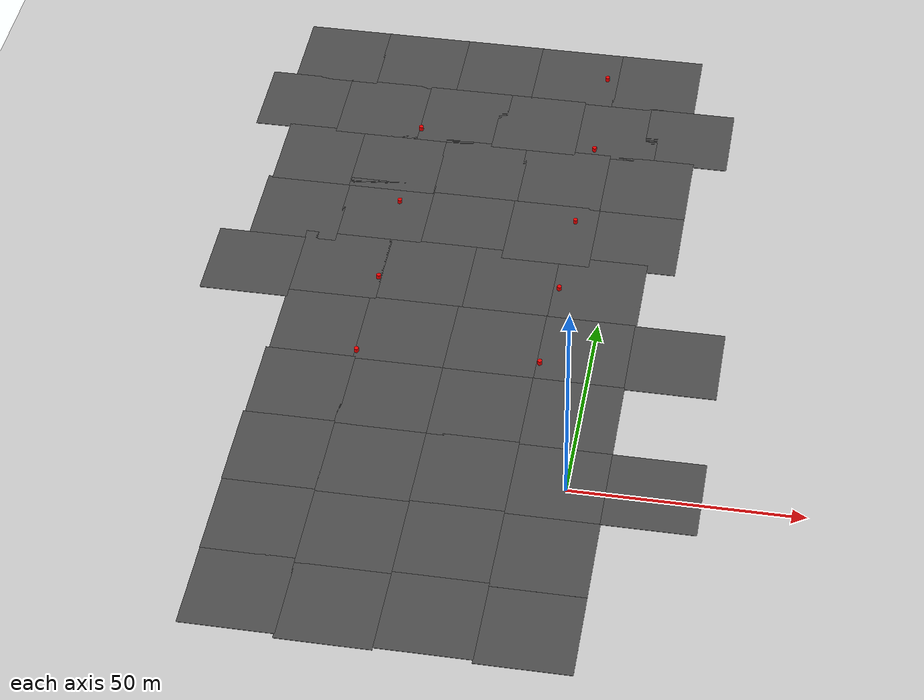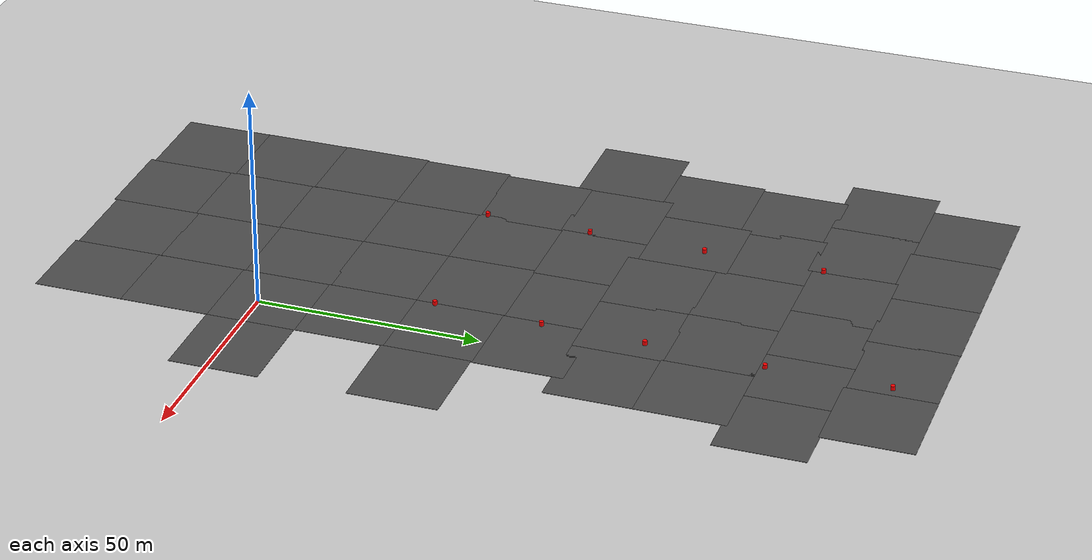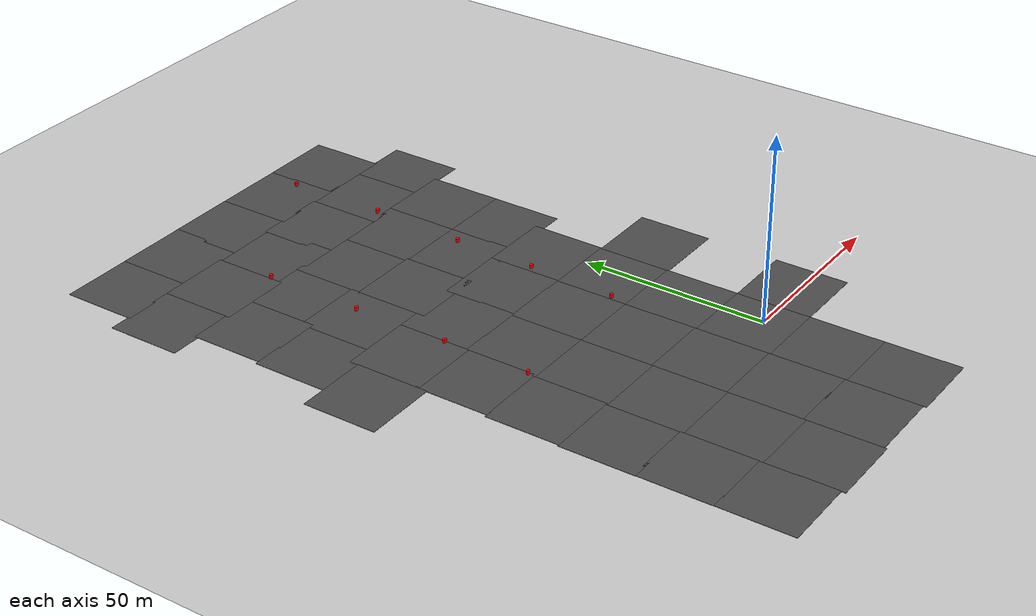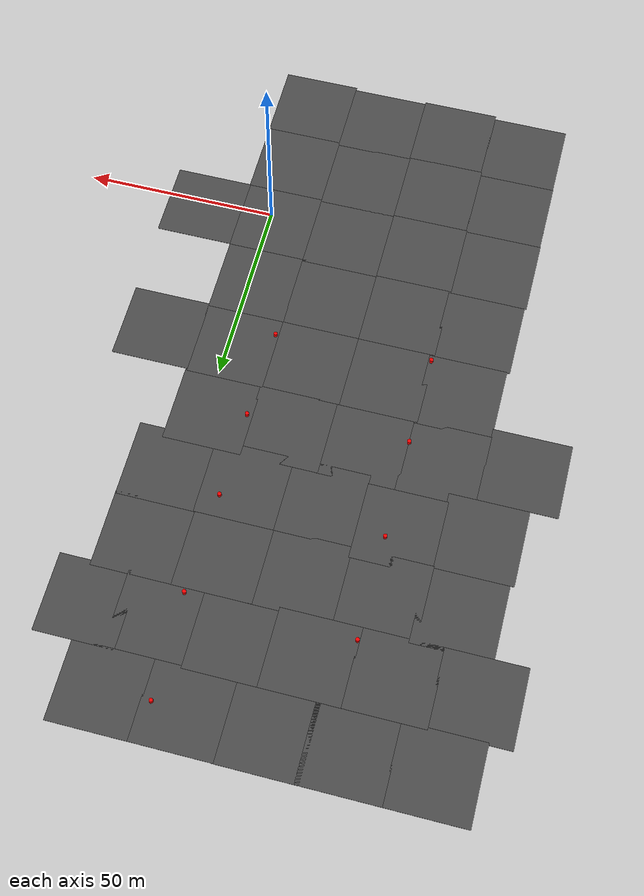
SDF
<sdf version="1.6">
 <world name="default">
  <model name="ground_plane">
   <static>1</static>
   <link name="link">
    <collision name="collision">
     <geometry><plane><normal>0 0 1</normal><size>100 100</size></plane></geometry>
     <surface>
      <contact><collide_bitmask>65535</collide_bitmask></contact>
      <friction><ode><mu>100</mu><mu2>50</mu2></ode></friction>
     </surface>
    </collision>
    <visual name="visual">
     <cast_shadows>0</cast_shadows>
     <geometry><plane><normal>0 0 1</normal><size>100 100</size></plane></geometry>
     <material>
      <script><uri>file://media/materials/scripts/gazebo.material</uri><name>Gazebo/Grey</name></script>
     </material>
    </visual>
   </link>
  </model>
  <model name="asphalt_plane">
   <static>1</static>
   <link name="link">
    <collision name="collision"><geometry><box><size>20 20 0.1</size></box></geometry></collision>
    <visual name="visual">
     <cast_shadows>0</cast_shadows>
     <geometry><box><size>20 20 0.1</size></box></geometry>
     <material>
      <script>
       <uri>model://asphalt_plane/materials/scripts</uri>
       <uri>model://asphalt_plane/materials/textures</uri>
       <name>vrc/asphalt</name>
      </script>
     </material>
    </visual>
   </link>
   <pose>-1.68563 1.69754 0 0 -0 0</pose>
  </model>
  <model name="asphalt_plane_0">
   <static>1</static>
   <link name="link">
    <collision name="collision"><geometry><box><size>20 20 0.1</size></box></geometry></collision>
    <visual name="visual">
     <cast_shadows>0</cast_shadows>
     <geometry><box><size>20 20 0.1</size></box></geometry>
     <material>
      <script>
       <uri>model://asphalt_plane/materials/scripts</uri>
       <uri>model://asphalt_plane/materials/textures</uri>
       <name>vrc/asphalt</name>
      </script>
     </material>
    </visual>
   </link>
   <pose>-21.6689 2.145 0 0 -0 0</pose>
  </model>
  <model name="asphalt_plane_1">
   <static>1</static>
   <link name="link">
    <collision name="collision"><geometry><box><size>20 20 0.1</size></box></geometry></collision>
    <visual name="visual">
     <cast_shadows>0</cast_shadows>
     <geometry><box><size>20 20 0.1</size></box></geometry>
     <material>
      <script>
       <uri>model://asphalt_plane/materials/scripts</uri>
       <uri>model://asphalt_plane/materials/textures</uri>
       <name>vrc/asphalt</name>
      </script>
     </material>
    </visual>
   </link>
   <pose>-21.6452 -17.7707 0 0 -0 0</pose>
  </model>
  <model name="asphalt_plane_2">
   <static>1</static>
   <link name="link">
    <collision name="collision"><geometry><box><size>20 20 0.1</size></box></geometry></collision>
    <visual name="visual">
     <cast_shadows>0</cast_shadows>
     <geometry><box><size>20 20 0.1</size></box></geometry>
     <material>
      <script>
       <uri>model://asphalt_plane/materials/scripts</uri>
       <uri>model://asphalt_plane/materials/textures</uri>
       <name>vrc/asphalt</name>
      </script>
     </material>
    </visual>
   </link>
   <pose>-1.66972 -18.2921 0 0 -0 0</pose>
  </model>
  <model name="asphalt_plane_3">
   <static>1</static>
   <link name="link">
    <collision name="collision"><geometry><box><size>20 20 0.1</size></box></geometry></collision>
    <visual name="visual">
     <cast_shadows>0</cast_shadows>
     <geometry><box><size>20 20 0.1</size></box></geometry>
     <material>
      <script>
       <uri>model://asphalt_plane/materials/scripts</uri>
       <uri>model://asphalt_plane/materials/textures</uri>
       <name>vrc/asphalt</name>
      </script>
     </material>
    </visual>
   </link>
   <pose>-1.6587 -38.2936 0 0 -0 0</pose>
  </model>
  <model name="asphalt_plane_4">
   <static>1</static>
   <link name="link">
    <collision name="collision"><geometry><box><size>20 20 0.1</size></box></geometry></collision>
    <visual name="visual">
     <cast_shadows>0</cast_shadows>
     <geometry><box><size>20 20 0.1</size></box></geometry>
     <material>
      <script>
       <uri>model://asphalt_plane/materials/scripts</uri>
       <uri>model://asphalt_plane/materials/textures</uri>
       <name>vrc/asphalt</name>
      </script>
     </material>
    </visual>
   </link>
   <pose>-21.5514 -37.4819 0 0 -0 0</pose>
  </model>
  <model name="asphalt_plane_5">
   <static>1</static>
   <link name="link">
    <collision name="collision"><geometry><box><size>20 20 0.1</size></box></geometry></collision>
    <visual name="visual">
     <cast_shadows>0</cast_shadows>
     <geometry><box><size>20 20 0.1</size></box></geometry>
     <material>
      <script>
       <uri>model://asphalt_plane/materials/scripts</uri>
       <uri>model://asphalt_plane/materials/textures</uri>
       <name>vrc/asphalt</name>
      </script>
     </material>
    </visual>
   </link>
   <pose>-21.6627 21.6769 0 0 -0 0</pose>
  </model>
  <model name="asphalt_plane_6">
   <static>1</static>
   <link name="link">
    <collision name="collision"><geometry><box><size>20 20 0.1</size></box></geometry></collision>
    <visual name="visual">
     <cast_shadows>0</cast_shadows>
     <geometry><box><size>20 20 0.1</size></box></geometry>
     <material>
      <script>
       <uri>model://asphalt_plane/materials/scripts</uri>
       <uri>model://asphalt_plane/materials/textures</uri>
       <name>vrc/asphalt</name>
      </script>
     </material>
    </visual>
   </link>
   <pose>-21.6696 41.6469 0 0 -0 0</pose>
  </model>
  <model name="asphalt_plane_7">
   <static>1</static>
   <link name="link">
    <collision name="collision"><geometry><box><size>20 20 0.1</size></box></geometry></collision>
    <visual name="visual">
     <cast_shadows>0</cast_shadows>
     <geometry><box><size>20 20 0.1</size></box></geometry>
     <material>
      <script>
       <uri>model://asphalt_plane/materials/scripts</uri>
       <uri>model://asphalt_plane/materials/textures</uri>
       <name>vrc/asphalt</name>
      </script>
     </material>
    </visual>
   </link>
   <pose>-1.7727 21.6828 0 0 -0 0</pose>
  </model>
  <model name="asphalt_plane_8">
   <static>1</static>
   <link name="link">
    <collision name="collision"><geometry><box><size>20 20 0.1</size></box></geometry></collision>
    <visual name="visual">
     <cast_shadows>0</cast_shadows>
     <geometry><box><size>20 20 0.1</size></box></geometry>
     <material>
      <script>
       <uri>model://asphalt_plane/materials/scripts</uri>
       <uri>model://asphalt_plane/materials/textures</uri>
       <name>vrc/asphalt</name>
      </script>
     </material>
    </visual>
   </link>
   <pose>-1.71814 41.6665 0 0 -0 0</pose>
  </model>
  <model name="asphalt_plane_11">
   <static>1</static>
   <link name="link">
    <collision name="collision"><geometry><box><size>20 20 0.1</size></box></geometry></collision>
    <visual name="visual">
     <cast_shadows>0</cast_shadows>
     <geometry><box><size>20 20 0.1</size></box></geometry>
     <material>
      <script>
       <uri>model://asphalt_plane/materials/scripts</uri>
       <uri>model://asphalt_plane/materials/textures</uri>
       <name>vrc/asphalt</name>
      </script>
     </material>
    </visual>
   </link>
   <pose>18.1716 1.63074 0 0 -0 0</pose>
  </model>
  <model name="asphalt_plane_13">
   <static>1</static>
   <link name="link">
    <collision name="collision"><geometry><box><size>20 20 0.1</size></box></geometry></collision>
    <visual name="visual">
     <cast_shadows>0</cast_shadows>
     <geometry><box><size>20 20 0.1</size></box></geometry>
     <material>
      <script>
       <uri>model://asphalt_plane/materials/scripts</uri>
       <uri>model://asphalt_plane/materials/textures</uri>
       <name>vrc/asphalt</name>
      </script>
     </material>
    </visual>
   </link>
   <pose>18.0714 41.1468 0 0 -0 0</pose>
  </model>
  <model name="asphalt_plane_19">
   <static>1</static>
   <link name="link">
    <collision name="collision"><geometry><box><size>20 20 0.1</size></box></geometry></collision>
    <visual name="visual">
     <cast_shadows>0</cast_shadows>
     <geometry><box><size>20 20 0.1</size></box></geometry>
     <material>
      <script>
       <uri>model://asphalt_plane/materials/scripts</uri>
       <uri>model://asphalt_plane/materials/textures</uri>
       <name>vrc/asphalt</name>
      </script>
     </material>
    </visual>
   </link>
   <pose>-41.6151 41.6794 0 0 -0 0</pose>
  </model>
  <model name="asphalt_plane_20">
   <static>1</static>
   <link name="link">
    <collision name="collision"><geometry><box><size>20 20 0.1</size></box></geometry></collision>
    <visual name="visual">
     <cast_shadows>0</cast_shadows>
     <geometry><box><size>20 20 0.1</size></box></geometry>
     <material>
      <script>
       <uri>model://asphalt_plane/materials/scripts</uri>
       <uri>model://asphalt_plane/materials/textures</uri>
       <name>vrc/asphalt</name>
      </script>
     </material>
    </visual>
   </link>
   <pose>-41.6462 21.7314 0 0 -0 0</pose>
  </model>
  <model name="asphalt_plane_21">
   <static>1</static>
   <link name="link">
    <collision name="collision"><geometry><box><size>20 20 0.1</size></box></geometry></collision>
    <visual name="visual">
     <cast_shadows>0</cast_shadows>
     <geometry><box><size>20 20 0.1</size></box></geometry>
     <material>
      <script>
       <uri>model://asphalt_plane/materials/scripts</uri>
       <uri>model://asphalt_plane/materials/textures</uri>
       <name>vrc/asphalt</name>
      </script>
     </material>
    </visual>
   </link>
   <pose>-41.6242 1.80147 0 0 -0 0</pose>
  </model>
  <model name="asphalt_plane_22">
   <static>1</static>
   <link name="link">
    <collision name="collision"><geometry><box><size>20 20 0.1</size></box></geometry></collision>
    <visual name="visual">
     <cast_shadows>0</cast_shadows>
     <geometry><box><size>20 20 0.1</size></box></geometry>
     <material>
      <script>
       <uri>model://asphalt_plane/materials/scripts</uri>
       <uri>model://asphalt_plane/materials/textures</uri>
       <name>vrc/asphalt</name>
      </script>
     </material>
    </visual>
   </link>
   <pose>-41.5505 -18.1854 0 0 -0 0</pose>
  </model>
  <model name="asphalt_plane_23">
   <static>1</static>
   <link name="link">
    <collision name="collision"><geometry><box><size>20 20 0.1</size></box></geometry></collision>
    <visual name="visual">
     <cast_shadows>0</cast_shadows>
     <geometry><box><size>20 20 0.1</size></box></geometry>
     <material>
      <script>
       <uri>model://asphalt_plane/materials/scripts</uri>
       <uri>model://asphalt_plane/materials/textures</uri>
       <name>vrc/asphalt</name>
      </script>
     </material>
    </visual>
   </link>
   <pose>-41.5125 -38.0904 0 0 -0 0</pose>
  </model>
  <model name="asphalt_plane_26">
   <static>1</static>
   <link name="link">
    <collision name="collision"><geometry><box><size>20 20 0.1</size></box></geometry></collision>
    <visual name="visual">
     <cast_shadows>0</cast_shadows>
     <geometry><box><size>20 20 0.1</size></box></geometry>
     <material>
      <script>
       <uri>model://asphalt_plane/materials/scripts</uri>
       <uri>model://asphalt_plane/materials/textures</uri>
       <name>vrc/asphalt</name>
      </script>
     </material>
    </visual>
   </link>
   <pose>-1.5571 61.3628 0 0 -0 0</pose>
  </model>
  <model name="asphalt_plane_27">
   <static>1</static>
   <link name="link">
    <collision name="collision"><geometry><box><size>20 20 0.1</size></box></geometry></collision>
    <visual name="visual">
     <cast_shadows>0</cast_shadows>
     <geometry><box><size>20 20 0.1</size></box></geometry>
     <material>
      <script>
       <uri>model://asphalt_plane/materials/scripts</uri>
       <uri>model://asphalt_plane/materials/textures</uri>
       <name>vrc/asphalt</name>
      </script>
     </material>
    </visual>
   </link>
   <pose>-21.1441 61.4149 0 0 -0 0</pose>
  </model>
  <model name="asphalt_plane_28">
   <static>1</static>
   <link name="link">
    <collision name="collision"><geometry><box><size>20 20 0.1</size></box></geometry></collision>
    <visual name="visual">
     <cast_shadows>0</cast_shadows>
     <geometry><box><size>20 20 0.1</size></box></geometry>
     <material>
      <script>
       <uri>model://asphalt_plane/materials/scripts</uri>
       <uri>model://asphalt_plane/materials/textures</uri>
       <name>vrc/asphalt</name>
      </script>
     </material>
    </visual>
   </link>
   <pose>-40.8033 61.467 0 0 -0 0</pose>
  </model>
  <model name="asphalt_plane_87">
   <static>1</static>
   <link name="link">
    <collision name="collision"><geometry><box><size>20 20 0.1</size></box></geometry></collision>
    <visual name="visual">
     <cast_shadows>0</cast_shadows>
     <geometry><box><size>20 20 0.1</size></box></geometry>
     <material>
      <script>
       <uri>model://asphalt_plane/materials/scripts</uri>
       <uri>model://asphalt_plane/materials/textures</uri>
       <name>vrc/asphalt</name>
      </script>
     </material>
    </visual>
   </link>
   <pose>4.85843 78.9112 0 0 -0 0</pose>
  </model>
  <model name="asphalt_plane_88">
   <static>1</static>
   <link name="link">
    <collision name="collision"><geometry><box><size>20 20 0.1</size></box></geometry></collision>
    <visual name="visual">
     <cast_shadows>0</cast_shadows>
     <geometry><box><size>20 20 0.1</size></box></geometry>
     <material>
      <script>
       <uri>model://asphalt_plane/materials/scripts</uri>
       <uri>model://asphalt_plane/materials/textures</uri>
       <name>vrc/asphalt</name>
      </script>
     </material>
    </visual>
   </link>
   <pose>-14.7381 78.8062 0 0 -0 0</pose>
  </model>
  <model name="asphalt_plane_89">
   <static>1</static>
   <link name="link">
    <collision name="collision"><geometry><box><size>20 20 0.1</size></box></geometry></collision>
    <visual name="visual">
     <cast_shadows>0</cast_shadows>
     <geometry><box><size>20 20 0.1</size></box></geometry>
     <material>
      <script>
       <uri>model://asphalt_plane/materials/scripts</uri>
       <uri>model://asphalt_plane/materials/textures</uri>
       <name>vrc/asphalt</name>
      </script>
     </material>
    </visual>
   </link>
   <pose>-33.9221 78.8179 0 0 -0 0</pose>
  </model>
  <model name="asphalt_plane_90">
   <static>1</static>
   <link name="link">
    <collision name="collision"><geometry><box><size>20 20 0.1</size></box></geometry></collision>
    <visual name="visual">
     <cast_shadows>0</cast_shadows>
     <geometry><box><size>20 20 0.1</size></box></geometry>
     <material>
      <script>
       <uri>model://asphalt_plane/materials/scripts</uri>
       <uri>model://asphalt_plane/materials/textures</uri>
       <name>vrc/asphalt</name>
      </script>
     </material>
    </visual>
   </link>
   <pose>-53.7728 81.0871 0 0 -0 0</pose>
  </model>
  <model name="asphalt_plane_91">
   <static>1</static>
   <link name="link">
    <collision name="collision"><geometry><box><size>20 20 0.1</size></box></geometry></collision>
    <visual name="visual">
     <cast_shadows>0</cast_shadows>
     <geometry><box><size>20 20 0.1</size></box></geometry>
     <material>
      <script>
       <uri>model://asphalt_plane/materials/scripts</uri>
       <uri>model://asphalt_plane/materials/textures</uri>
       <name>vrc/asphalt</name>
      </script>
     </material>
    </visual>
   </link>
   <pose>-60.3231 61.088 0 0 -0 0</pose>
  </model>
  <model name="asphalt_plane_92">
   <static>1</static>
   <link name="link">
    <collision name="collision"><geometry><box><size>20 20 0.1</size></box></geometry></collision>
    <visual name="visual">
     <cast_shadows>0</cast_shadows>
     <geometry><box><size>20 20 0.1</size></box></geometry>
     <material>
      <script>
       <uri>model://asphalt_plane/materials/scripts</uri>
       <uri>model://asphalt_plane/materials/textures</uri>
       <name>vrc/asphalt</name>
      </script>
     </material>
    </visual>
   </link>
   <pose>-60.3819 41.9482 0 0 -0 0</pose>
  </model>
  <model name="asphalt_plane_93">
   <static>1</static>
   <link name="link">
    <collision name="collision"><geometry><box><size>20 20 0.1</size></box></geometry></collision>
    <visual name="visual">
     <cast_shadows>0</cast_shadows>
     <geometry><box><size>20 20 0.1</size></box></geometry>
     <material>
      <script>
       <uri>model://asphalt_plane/materials/scripts</uri>
       <uri>model://asphalt_plane/materials/textures</uri>
       <name>vrc/asphalt</name>
      </script>
     </material>
    </visual>
   </link>
   <pose>-61.0956 22.1692 0 0 -0 0</pose>
  </model>
  <model name="asphalt_plane_94">
   <static>1</static>
   <link name="link">
    <collision name="collision"><geometry><box><size>20 20 0.1</size></box></geometry></collision>
    <visual name="visual">
     <cast_shadows>0</cast_shadows>
     <geometry><box><size>20 20 0.1</size></box></geometry>
     <material>
      <script>
       <uri>model://asphalt_plane/materials/scripts</uri>
       <uri>model://asphalt_plane/materials/textures</uri>
       <name>vrc/asphalt</name>
      </script>
     </material>
    </visual>
   </link>
   <pose>-61.517 2.21241 0 0 -0 0</pose>
  </model>
  <model name="asphalt_plane_95">
   <static>1</static>
   <link name="link">
    <collision name="collision"><geometry><box><size>20 20 0.1</size></box></geometry></collision>
    <visual name="visual">
     <cast_shadows>0</cast_shadows>
     <geometry><box><size>20 20 0.1</size></box></geometry>
     <material>
      <script>
       <uri>model://asphalt_plane/materials/scripts</uri>
       <uri>model://asphalt_plane/materials/textures</uri>
       <name>vrc/asphalt</name>
      </script>
     </material>
    </visual>
   </link>
   <pose>-61.4053 -17.1822 0 0 -0 0</pose>
  </model>
  <model name="asphalt_plane_96">
   <static>1</static>
   <link name="link">
    <collision name="collision"><geometry><box><size>20 20 0.1</size></box></geometry></collision>
    <visual name="visual">
     <cast_shadows>0</cast_shadows>
     <geometry><box><size>20 20 0.1</size></box></geometry>
     <material>
      <script>
       <uri>model://asphalt_plane/materials/scripts</uri>
       <uri>model://asphalt_plane/materials/textures</uri>
       <name>vrc/asphalt</name>
      </script>
     </material>
    </visual>
   </link>
   <pose>-61.3325 -37.0305 0 0 -0 0</pose>
  </model>
  <model name="asphalt_plane_139">
   <static>1</static>
   <link name="link">
    <collision name="collision"><geometry><box><size>20 20 0.1</size></box></geometry></collision>
    <visual name="visual">
     <cast_shadows>0</cast_shadows>
     <geometry><box><size>20 20 0.1</size></box></geometry>
     <material>
      <script>
       <uri>model://asphalt_plane/materials/scripts</uri>
       <uri>model://asphalt_plane/materials/textures</uri>
       <name>vrc/asphalt</name>
      </script>
     </material>
    </visual>
   </link>
   <pose>4.87272 98.2548 0 0 -0 0</pose>
  </model>
  <model name="asphalt_plane_140">
   <static>1</static>
   <link name="link">
    <collision name="collision"><geometry><box><size>20 20 0.1</size></box></geometry></collision>
    <visual name="visual">
     <cast_shadows>0</cast_shadows>
     <geometry><box><size>20 20 0.1</size></box></geometry>
     <material>
      <script>
       <uri>model://asphalt_plane/materials/scripts</uri>
       <uri>model://asphalt_plane/materials/textures</uri>
       <name>vrc/asphalt</name>
      </script>
     </material>
    </visual>
   </link>
   <pose>-14.8585 98.286 0 0 -0 0</pose>
  </model>
  <model name="asphalt_plane_141">
   <static>1</static>
   <link name="link">
    <collision name="collision"><geometry><box><size>20 20 0.1</size></box></geometry></collision>
    <visual name="visual">
     <cast_shadows>0</cast_shadows>
     <geometry><box><size>20 20 0.1</size></box></geometry>
     <material>
      <script>
       <uri>model://asphalt_plane/materials/scripts</uri>
       <uri>model://asphalt_plane/materials/textures</uri>
       <name>vrc/asphalt</name>
      </script>
     </material>
    </visual>
   </link>
   <pose>-34.2146 98.3101 0 0 -0 0</pose>
  </model>
  <model name="asphalt_plane_142">
   <static>1</static>
   <link name="link">
    <collision name="collision"><geometry><box><size>20 20 0.1</size></box></geometry></collision>
    <visual name="visual">
     <cast_shadows>0</cast_shadows>
     <geometry><box><size>20 20 0.1</size></box></geometry>
     <material>
      <script>
       <uri>model://asphalt_plane/materials/scripts</uri>
       <uri>model://asphalt_plane/materials/textures</uri>
       <name>vrc/asphalt</name>
      </script>
     </material>
    </visual>
   </link>
   <pose>-53.9836 98.2864 0 0 -0 0</pose>
  </model>
  <model name="asphalt_plane_143">
   <static>1</static>
   <link name="link">
    <collision name="collision"><geometry><box><size>20 20 0.1</size></box></geometry></collision>
    <visual name="visual">
     <cast_shadows>0</cast_shadows>
     <geometry><box><size>20 20 0.1</size></box></geometry>
     <material>
      <script>
       <uri>model://asphalt_plane/materials/scripts</uri>
       <uri>model://asphalt_plane/materials/textures</uri>
       <name>vrc/asphalt</name>
      </script>
     </material>
    </visual>
   </link>
   <pose>-72.3182 98.3078 0 0 -0 0</pose>
  </model>
  <model name="asphalt_plane_144">
   <static>1</static>
   <link name="link">
    <collision name="collision"><geometry><box><size>20 20 0.1</size></box></geometry></collision>
    <visual name="visual">
     <cast_shadows>0</cast_shadows>
     <geometry><box><size>20 20 0.1</size></box></geometry>
     <material>
      <script>
       <uri>model://asphalt_plane/materials/scripts</uri>
       <uri>model://asphalt_plane/materials/textures</uri>
       <name>vrc/asphalt</name>
      </script>
     </material>
    </visual>
   </link>
   <pose>-73.251 78.7338 0 0 -0 0</pose>
  </model>
  <model name="asphalt_plane_145">
   <static>1</static>
   <link name="link">
    <collision name="collision"><geometry><box><size>20 20 0.1</size></box></geometry></collision>
    <visual name="visual">
     <cast_shadows>0</cast_shadows>
     <geometry><box><size>20 20 0.1</size></box></geometry>
     <material>
      <script>
       <uri>model://asphalt_plane/materials/scripts</uri>
       <uri>model://asphalt_plane/materials/textures</uri>
       <name>vrc/asphalt</name>
      </script>
     </material>
    </visual>
   </link>
   <pose>-80.1206 58.7781 0 0 -0 0</pose>
  </model>
  <model name="asphalt_plane_160">
   <static>1</static>
   <link name="link">
    <collision name="collision"><geometry><box><size>20 20 0.1</size></box></geometry></collision>
    <visual name="visual">
     <cast_shadows>0</cast_shadows>
     <geometry><box><size>20 20 0.1</size></box></geometry>
     <material>
      <script>
       <uri>model://asphalt_plane/materials/scripts</uri>
       <uri>model://asphalt_plane/materials/textures</uri>
       <name>vrc/asphalt</name>
      </script>
     </material>
    </visual>
   </link>
   <pose>12.6571 117.077 0 0 -0 0</pose>
  </model>
  <model name="asphalt_plane_161">
   <static>1</static>
   <link name="link">
    <collision name="collision"><geometry><box><size>20 20 0.1</size></box></geometry></collision>
    <visual name="visual">
     <cast_shadows>0</cast_shadows>
     <geometry><box><size>20 20 0.1</size></box></geometry>
     <material>
      <script>
       <uri>model://asphalt_plane/materials/scripts</uri>
       <uri>model://asphalt_plane/materials/textures</uri>
       <name>vrc/asphalt</name>
      </script>
     </material>
    </visual>
   </link>
   <pose>-4.5132 117.248 0 0 -0 0</pose>
  </model>
  <model name="asphalt_plane_162">
   <static>1</static>
   <link name="link">
    <collision name="collision"><geometry><box><size>20 20 0.1</size></box></geometry></collision>
    <visual name="visual">
     <cast_shadows>0</cast_shadows>
     <geometry><box><size>20 20 0.1</size></box></geometry>
     <material>
      <script>
       <uri>model://asphalt_plane/materials/scripts</uri>
       <uri>model://asphalt_plane/materials/textures</uri>
       <name>vrc/asphalt</name>
      </script>
     </material>
    </visual>
   </link>
   <pose>-23.3943 117.324 0 0 -0 0</pose>
  </model>
  <model name="asphalt_plane_163">
   <static>1</static>
   <link name="link">
    <collision name="collision"><geometry><box><size>20 20 0.1</size></box></geometry></collision>
    <visual name="visual">
     <cast_shadows>0</cast_shadows>
     <geometry><box><size>20 20 0.1</size></box></geometry>
     <material>
      <script>
       <uri>model://asphalt_plane/materials/scripts</uri>
       <uri>model://asphalt_plane/materials/textures</uri>
       <name>vrc/asphalt</name>
      </script>
     </material>
    </visual>
   </link>
   <pose>-41.3632 117.326 0 0 -0 0</pose>
  </model>
  <model name="asphalt_plane_164">
   <static>1</static>
   <link name="link">
    <collision name="collision"><geometry><box><size>20 20 0.1</size></box></geometry></collision>
    <visual name="visual">
     <cast_shadows>0</cast_shadows>
     <geometry><box><size>20 20 0.1</size></box></geometry>
     <material>
      <script>
       <uri>model://asphalt_plane/materials/scripts</uri>
       <uri>model://asphalt_plane/materials/textures</uri>
       <name>vrc/asphalt</name>
      </script>
     </material>
    </visual>
   </link>
   <pose>-61.0332 117.32 0 0 -0 0</pose>
  </model>
  <model name="asphalt_plane_165">
   <static>1</static>
   <link name="link">
    <collision name="collision"><geometry><box><size>20 20 0.1</size></box></geometry></collision>
    <visual name="visual">
     <cast_shadows>0</cast_shadows>
     <geometry><box><size>20 20 0.1</size></box></geometry>
     <material>
      <script>
       <uri>model://asphalt_plane/materials/scripts</uri>
       <uri>model://asphalt_plane/materials/textures</uri>
       <name>vrc/asphalt</name>
      </script>
     </material>
    </visual>
   </link>
   <pose>-80.5769 117.311 0 0 -0 0</pose>
  </model>
  <model name="asphalt_plane_180">
   <static>1</static>
   <link name="link">
    <collision name="collision"><geometry><box><size>20 20 0.1</size></box></geometry></collision>
    <visual name="visual">
     <cast_shadows>0</cast_shadows>
     <geometry><box><size>20 20 0.1</size></box></geometry>
     <material>
      <script>
       <uri>model://asphalt_plane/materials/scripts</uri>
       <uri>model://asphalt_plane/materials/textures</uri>
       <name>vrc/asphalt</name>
      </script>
     </material>
    </visual>
   </link>
   <pose>2.90668 136.684 0 0 -0 0</pose>
  </model>
  <model name="asphalt_plane_181">
   <static>1</static>
   <link name="link">
    <collision name="collision"><geometry><box><size>20 20 0.1</size></box></geometry></collision>
    <visual name="visual">
     <cast_shadows>0</cast_shadows>
     <geometry><box><size>20 20 0.1</size></box></geometry>
     <material>
      <script>
       <uri>model://asphalt_plane/materials/scripts</uri>
       <uri>model://asphalt_plane/materials/textures</uri>
       <name>vrc/asphalt</name>
      </script>
     </material>
    </visual>
   </link>
   <pose>-16.7348 136.666 0 0 -0 0</pose>
  </model>
  <model name="asphalt_plane_182">
   <static>1</static>
   <link name="link">
    <collision name="collision"><geometry><box><size>20 20 0.1</size></box></geometry></collision>
    <visual name="visual">
     <cast_shadows>0</cast_shadows>
     <geometry><box><size>20 20 0.1</size></box></geometry>
     <material>
      <script>
       <uri>model://asphalt_plane/materials/scripts</uri>
       <uri>model://asphalt_plane/materials/textures</uri>
       <name>vrc/asphalt</name>
      </script>
     </material>
    </visual>
   </link>
   <pose>-36.3621 136.728 0 0 -0 0</pose>
  </model>
  <model name="asphalt_plane_183">
   <static>1</static>
   <link name="link">
    <collision name="collision"><geometry><box><size>20 20 0.1</size></box></geometry></collision>
    <visual name="visual">
     <cast_shadows>0</cast_shadows>
     <geometry><box><size>20 20 0.1</size></box></geometry>
     <material>
      <script>
       <uri>model://asphalt_plane/materials/scripts</uri>
       <uri>model://asphalt_plane/materials/textures</uri>
       <name>vrc/asphalt</name>
      </script>
     </material>
    </visual>
   </link>
   <pose>-55.2166 136.702 0 0 -0 0</pose>
  </model>
  <model name="asphalt_plane_184">
   <static>1</static>
   <link name="link">
    <collision name="collision"><geometry><box><size>20 20 0.1</size></box></geometry></collision>
    <visual name="visual">
     <cast_shadows>0</cast_shadows>
     <geometry><box><size>20 20 0.1</size></box></geometry>
     <material>
      <script>
       <uri>model://asphalt_plane/materials/scripts</uri>
       <uri>model://asphalt_plane/materials/textures</uri>
       <name>vrc/asphalt</name>
      </script>
     </material>
    </visual>
   </link>
   <pose>-74.9449 136.695 0 0 -0 0</pose>
  </model>
  <model name="station_84">
   <link name="link">
    <inertial>
     <mass>1</mass>
     <inertia><ixx>0.145833</ixx><ixy>0</ixy><ixz>0</ixz><iyy>0.145833</iyy><iyz>0</iyz><izz>0.125</izz></inertia>
    </inertial>
    <visual name="visual">
     <geometry><cylinder><radius>0.5</radius><length>1</length></cylinder></geometry>
     <material>
      <script><name>Gazebo/Grey</name><uri>file://media/materials/scripts/gazebo.material</uri></script>
      <shader type="vertex"><normal_map>__default__</normal_map></shader>
      <ambient>1 0 0 0</ambient>
      <diffuse>0 0 0 1</diffuse>
      <specular>0.91 0.01 0.01 1</specular>
      <emissive>0 0 0 1</emissive>
     </material>
    </visual>
    <collision name="collision">
     <geometry><cylinder><radius>0.5</radius><length>1</length></cylinder></geometry>
     <surface>
      <friction>
       <ode><mu>1</mu><mu2>1</mu2><fdir1>0 0 0</fdir1><slip1>0</slip1><slip2>0</slip2></ode>
       <torsional>
        <coefficient>1</coefficient>
        <patch_radius>0</patch_radius>
        <surface_radius>0</surface_radius>
        <use_patch_radius>1</use_patch_radius>
        <ode><slip>0</slip></ode>
       </torsional>
      </friction>
      <bounce><restitution_coefficient>0</restitution_coefficient><threshold>1e+06</threshold></bounce>
      <contact>
       <collide_without_contact>0</collide_without_contact>
       <collide_without_contact_bitmask>1</collide_without_contact_bitmask>
       <collide_bitmask>1</collide_bitmask>
       <ode>
        <soft_cfm>0</soft_cfm>
        <soft_erp>0.2</soft_erp>
        <kp>1e+13</kp>
        <kd>1</kd>
        <max_vel>0.01</max_vel>
        <min_depth>0</min_depth>
       </ode>
       <bullet>
        <split_impulse>1</split_impulse>
        <split_impulse_penetration_threshold>-0.01</split_impulse_penetration_threshold>
        <soft_cfm>0</soft_cfm>
        <soft_erp>0.2</soft_erp>
        <kp>1e+13</kp>
        <kd>1</kd>
       </bullet>
      </contact>
     </surface>
    </collision>
   </link>
   <static>1</static>
   <pose>-9.27634 136.51 0.619557 0 -0 0</pose>
  </model>
  <model name="station_85">
   <link name="link">
    <inertial>
     <mass>1</mass>
     <inertia><ixx>0.145833</ixx><ixy>0</ixy><ixz>0</ixz><iyy>0.145833</iyy><iyz>0</iyz><izz>0.125</izz></inertia>
    </inertial>
    <visual name="visual">
     <geometry><cylinder><radius>0.5</radius><length>1</length></cylinder></geometry>
     <material>
      <script><name>Gazebo/Grey</name><uri>file://media/materials/scripts/gazebo.material</uri></script>
      <shader type="vertex"><normal_map>__default__</normal_map></shader>
      <ambient>1 0 0 0</ambient>
      <diffuse>0 0 0 1</diffuse>
      <specular>0.91 0.01 0.01 1</specular>
      <emissive>0 0 0 1</emissive>
     </material>
    </visual>
    <collision name="collision">
     <geometry><cylinder><radius>0.5</radius><length>1</length></cylinder></geometry>
     <surface>
      <friction>
       <ode><mu>1</mu><mu2>1</mu2><fdir1>0 0 0</fdir1><slip1>0</slip1><slip2>0</slip2></ode>
       <torsional>
        <coefficient>1</coefficient>
        <patch_radius>0</patch_radius>
        <surface_radius>0</surface_radius>
        <use_patch_radius>1</use_patch_radius>
        <ode><slip>0</slip></ode>
       </torsional>
      </friction>
      <bounce><restitution_coefficient>0</restitution_coefficient><threshold>1e+06</threshold></bounce>
      <contact>
       <collide_without_contact>0</collide_without_contact>
       <collide_without_contact_bitmask>1</collide_without_contact_bitmask>
       <collide_bitmask>1</collide_bitmask>
       <ode>
        <soft_cfm>0</soft_cfm>
        <soft_erp>0.2</soft_erp>
        <kp>1e+13</kp>
        <kd>1</kd>
        <max_vel>0.01</max_vel>
        <min_depth>0</min_depth>
       </ode>
       <bullet>
        <split_impulse>1</split_impulse>
        <split_impulse_penetration_threshold>-0.01</split_impulse_penetration_threshold>
        <soft_cfm>0</soft_cfm>
        <soft_erp>0.2</soft_erp>
        <kp>1e+13</kp>
        <kd>1</kd>
       </bullet>
      </contact>
     </surface>
    </collision>
   </link>
   <static>1</static>
   <pose>-8.895 109.512 0.619557 0 -0 0</pose>
  </model>
  <model name="station_86">
   <link name="link">
    <inertial>
     <mass>1</mass>
     <inertia><ixx>0.145833</ixx><ixy>0</ixy><ixz>0</ixz><iyy>0.145833</iyy><iyz>0</iyz><izz>0.125</izz></inertia>
    </inertial>
    <visual name="visual">
     <geometry><cylinder><radius>0.5</radius><length>1</length></cylinder></geometry>
     <material>
      <script><name>Gazebo/Grey</name><uri>file://media/materials/scripts/gazebo.material</uri></script>
      <shader type="vertex"><normal_map>__default__</normal_map></shader>
      <ambient>1 0 0 0</ambient>
      <diffuse>0 0 0 1</diffuse>
      <specular>0.91 0.01 0.01 1</specular>
      <emissive>0 0 0 1</emissive>
     </material>
    </visual>
    <collision name="collision">
     <geometry><cylinder><radius>0.5</radius><length>1</length></cylinder></geometry>
     <surface>
      <friction>
       <ode><mu>1</mu><mu2>1</mu2><fdir1>0 0 0</fdir1><slip1>0</slip1><slip2>0</slip2></ode>
       <torsional>
        <coefficient>1</coefficient>
        <patch_radius>0</patch_radius>
        <surface_radius>0</surface_radius>
        <use_patch_radius>1</use_patch_radius>
        <ode><slip>0</slip></ode>
       </torsional>
      </friction>
      <bounce><restitution_coefficient>0</restitution_coefficient><threshold>1e+06</threshold></bounce>
      <contact>
       <collide_without_contact>0</collide_without_contact>
       <collide_without_contact_bitmask>1</collide_without_contact_bitmask>
       <collide_bitmask>1</collide_bitmask>
       <ode>
        <soft_cfm>0</soft_cfm>
        <soft_erp>0.2</soft_erp>
        <kp>1e+13</kp>
        <kd>1</kd>
        <max_vel>0.01</max_vel>
        <min_depth>0</min_depth>
       </ode>
       <bullet>
        <split_impulse>1</split_impulse>
        <split_impulse_penetration_threshold>-0.01</split_impulse_penetration_threshold>
        <soft_cfm>0</soft_cfm>
        <soft_erp>0.2</soft_erp>
        <kp>1e+13</kp>
        <kd>1</kd>
       </bullet>
      </contact>
     </surface>
    </collision>
   </link>
   <static>1</static>
   <pose>-9.78538 83.2637 0.619557 0 -0 0</pose>
  </model>
  <model name="station_87">
   <link name="link">
    <inertial>
     <mass>1</mass>
     <inertia><ixx>0.145833</ixx><ixy>0</ixy><ixz>0</ixz><iyy>0.145833</iyy><iyz>0</iyz><izz>0.125</izz></inertia>
    </inertial>
    <visual name="visual">
     <geometry><cylinder><radius>0.5</radius><length>1</length></cylinder></geometry>
     <material>
      <script><name>Gazebo/Grey</name><uri>file://media/materials/scripts/gazebo.material</uri></script>
      <shader type="vertex"><normal_map>__default__</normal_map></shader>
      <ambient>1 0 0 0</ambient>
      <diffuse>0 0 0 1</diffuse>
      <specular>0.91 0.01 0.01 1</specular>
      <emissive>0 0 0 1</emissive>
     </material>
    </visual>
    <collision name="collision">
     <geometry><cylinder><radius>0.5</radius><length>1</length></cylinder></geometry>
     <surface>
      <friction>
       <ode><mu>1</mu><mu2>1</mu2><fdir1>0 0 0</fdir1><slip1>0</slip1><slip2>0</slip2></ode>
       <torsional>
        <coefficient>1</coefficient>
        <patch_radius>0</patch_radius>
        <surface_radius>0</surface_radius>
        <use_patch_radius>1</use_patch_radius>
        <ode><slip>0</slip></ode>
       </torsional>
      </friction>
      <bounce><restitution_coefficient>0</restitution_coefficient><threshold>1e+06</threshold></bounce>
      <contact>
       <collide_without_contact>0</collide_without_contact>
       <collide_without_contact_bitmask>1</collide_without_contact_bitmask>
       <collide_bitmask>1</collide_bitmask>
       <ode>
        <soft_cfm>0</soft_cfm>
        <soft_erp>0.2</soft_erp>
        <kp>1e+13</kp>
        <kd>1</kd>
        <max_vel>0.01</max_vel>
        <min_depth>0</min_depth>
       </ode>
       <bullet>
        <split_impulse>1</split_impulse>
        <split_impulse_penetration_threshold>-0.01</split_impulse_penetration_threshold>
        <soft_cfm>0</soft_cfm>
        <soft_erp>0.2</soft_erp>
        <kp>1e+13</kp>
        <kd>1</kd>
       </bullet>
      </contact>
     </surface>
    </collision>
   </link>
   <static>1</static>
   <pose>-10.2079 60.3107 0.619557 0 -0 0</pose>
  </model>
  <model name="station_88">
   <link name="link">
    <inertial>
     <mass>1</mass>
     <inertia><ixx>0.145833</ixx><ixy>0</ixy><ixz>0</ixz><iyy>0.145833</iyy><iyz>0</iyz><izz>0.125</izz></inertia>
    </inertial>
    <visual name="visual">
     <geometry><cylinder><radius>0.5</radius><length>1</length></cylinder></geometry>
     <material>
      <script><name>Gazebo/Grey</name><uri>file://media/materials/scripts/gazebo.material</uri></script>
      <shader type="vertex"><normal_map>__default__</normal_map></shader>
      <ambient>1 0 0 0</ambient>
      <diffuse>0 0 0 1</diffuse>
      <specular>0.91 0.01 0.01 1</specular>
      <emissive>0 0 0 1</emissive>
     </material>
    </visual>
    <collision name="collision">
     <geometry><cylinder><radius>0.5</radius><length>1</length></cylinder></geometry>
     <surface>
      <friction>
       <ode><mu>1</mu><mu2>1</mu2><fdir1>0 0 0</fdir1><slip1>0</slip1><slip2>0</slip2></ode>
       <torsional>
        <coefficient>1</coefficient>
        <patch_radius>0</patch_radius>
        <surface_radius>0</surface_radius>
        <use_patch_radius>1</use_patch_radius>
        <ode><slip>0</slip></ode>
       </torsional>
      </friction>
      <bounce><restitution_coefficient>0</restitution_coefficient><threshold>1e+06</threshold></bounce>
      <contact>
       <collide_without_contact>0</collide_without_contact>
       <collide_without_contact_bitmask>1</collide_without_contact_bitmask>
       <collide_bitmask>1</collide_bitmask>
       <ode>
        <soft_cfm>0</soft_cfm>
        <soft_erp>0.2</soft_erp>
        <kp>1e+13</kp>
        <kd>1</kd>
        <max_vel>0.01</max_vel>
        <min_depth>0</min_depth>
       </ode>
       <bullet>
        <split_impulse>1</split_impulse>
        <split_impulse_penetration_threshold>-0.01</split_impulse_penetration_threshold>
        <soft_cfm>0</soft_cfm>
        <soft_erp>0.2</soft_erp>
        <kp>1e+13</kp>
        <kd>1</kd>
       </bullet>
      </contact>
     </surface>
    </collision>
   </link>
   <static>1</static>
   <pose>-10.978 36.1204 0.619557 0 -0 0</pose>
  </model>
  <model name="station_89">
   <link name="link">
    <inertial>
     <mass>1</mass>
     <inertia><ixx>0.145833</ixx><ixy>0</ixy><ixz>0</ixz><iyy>0.145833</iyy><iyz>0</iyz><izz>0.125</izz></inertia>
    </inertial>
    <visual name="visual">
     <geometry><cylinder><radius>0.5</radius><length>1</length></cylinder></geometry>
     <material>
      <script><name>Gazebo/Grey</name><uri>file://media/materials/scripts/gazebo.material</uri></script>
      <shader type="vertex"><normal_map>__default__</normal_map></shader>
      <ambient>1 0 0 0</ambient>
      <diffuse>0 0 0 1</diffuse>
      <specular>0.91 0.01 0.01 1</specular>
      <emissive>0 0 0 1</emissive>
     </material>
    </visual>
    <collision name="collision">
     <geometry><cylinder><radius>0.5</radius><length>1</length></cylinder></geometry>
     <surface>
      <friction>
       <ode><mu>1</mu><mu2>1</mu2><fdir1>0 0 0</fdir1><slip1>0</slip1><slip2>0</slip2></ode>
       <torsional>
        <coefficient>1</coefficient>
        <patch_radius>0</patch_radius>
        <surface_radius>0</surface_radius>
        <use_patch_radius>1</use_patch_radius>
        <ode><slip>0</slip></ode>
       </torsional>
      </friction>
      <bounce><restitution_coefficient>0</restitution_coefficient><threshold>1e+06</threshold></bounce>
      <contact>
       <collide_without_contact>0</collide_without_contact>
       <collide_without_contact_bitmask>1</collide_without_contact_bitmask>
       <collide_bitmask>1</collide_bitmask>
       <ode>
        <soft_cfm>0</soft_cfm>
        <soft_erp>0.2</soft_erp>
        <kp>1e+13</kp>
        <kd>1</kd>
        <max_vel>0.01</max_vel>
        <min_depth>0</min_depth>
       </ode>
       <bullet>
        <split_impulse>1</split_impulse>
        <split_impulse_penetration_threshold>-0.01</split_impulse_penetration_threshold>
        <soft_cfm>0</soft_cfm>
        <soft_erp>0.2</soft_erp>
        <kp>1e+13</kp>
        <kd>1</kd>
       </bullet>
      </contact>
     </surface>
    </collision>
   </link>
   <static>1</static>
   <pose>-51.1745 33.7534 0.619557 0 -0 0</pose>
  </model>
  <model name="station_90">
   <link name="link">
    <inertial>
     <mass>1</mass>
     <inertia><ixx>0.145833</ixx><ixy>0</ixy><ixz>0</ixz><iyy>0.145833</iyy><iyz>0</iyz><izz>0.125</izz></inertia>
    </inertial>
    <visual name="visual">
     <geometry><cylinder><radius>0.5</radius><length>1</length></cylinder></geometry>
     <material>
      <script><name>Gazebo/Grey</name><uri>file://media/materials/scripts/gazebo.material</uri></script>
      <shader type="vertex"><normal_map>__default__</normal_map></shader>
      <ambient>1 0 0 0</ambient>
      <diffuse>0 0 0 1</diffuse>
      <specular>0.91 0.01 0.01 1</specular>
      <emissive>0 0 0 1</emissive>
     </material>
    </visual>
    <collision name="collision">
     <geometry><cylinder><radius>0.5</radius><length>1</length></cylinder></geometry>
     <surface>
      <friction>
       <ode><mu>1</mu><mu2>1</mu2><fdir1>0 0 0</fdir1><slip1>0</slip1><slip2>0</slip2></ode>
       <torsional>
        <coefficient>1</coefficient>
        <patch_radius>0</patch_radius>
        <surface_radius>0</surface_radius>
        <use_patch_radius>1</use_patch_radius>
        <ode><slip>0</slip></ode>
       </torsional>
      </friction>
      <bounce><restitution_coefficient>0</restitution_coefficient><threshold>1e+06</threshold></bounce>
      <contact>
       <collide_without_contact>0</collide_without_contact>
       <collide_without_contact_bitmask>1</collide_without_contact_bitmask>
       <collide_bitmask>1</collide_bitmask>
       <ode>
        <soft_cfm>0</soft_cfm>
        <soft_erp>0.2</soft_erp>
        <kp>1e+13</kp>
        <kd>1</kd>
        <max_vel>0.01</max_vel>
        <min_depth>0</min_depth>
       </ode>
       <bullet>
        <split_impulse>1</split_impulse>
        <split_impulse_penetration_threshold>-0.01</split_impulse_penetration_threshold>
        <soft_cfm>0</soft_cfm>
        <soft_erp>0.2</soft_erp>
        <kp>1e+13</kp>
        <kd>1</kd>
       </bullet>
      </contact>
     </surface>
    </collision>
   </link>
   <static>1</static>
   <pose>-50.8999 57.7574 0.619557 0 -0 0</pose>
  </model>
  <model name="station_91">
   <link name="link">
    <inertial>
     <mass>1</mass>
     <inertia><ixx>0.145833</ixx><ixy>0</ixy><ixz>0</ixz><iyy>0.145833</iyy><iyz>0</iyz><izz>0.125</izz></inertia>
    </inertial>
    <visual name="visual">
     <geometry><cylinder><radius>0.5</radius><length>1</length></cylinder></geometry>
     <material>
      <script><name>Gazebo/Grey</name><uri>file://media/materials/scripts/gazebo.material</uri></script>
      <shader type="vertex"><normal_map>__default__</normal_map></shader>
      <ambient>1 0 0 0</ambient>
      <diffuse>0 0 0 1</diffuse>
      <specular>0.91 0.01 0.01 1</specular>
      <emissive>0 0 0 1</emissive>
     </material>
    </visual>
    <collision name="collision">
     <geometry><cylinder><radius>0.5</radius><length>1</length></cylinder></geometry>
     <surface>
      <friction>
       <ode><mu>1</mu><mu2>1</mu2><fdir1>0 0 0</fdir1><slip1>0</slip1><slip2>0</slip2></ode>
       <torsional>
        <coefficient>1</coefficient>
        <patch_radius>0</patch_radius>
        <surface_radius>0</surface_radius>
        <use_patch_radius>1</use_patch_radius>
        <ode><slip>0</slip></ode>
       </torsional>
      </friction>
      <bounce><restitution_coefficient>0</restitution_coefficient><threshold>1e+06</threshold></bounce>
      <contact>
       <collide_without_contact>0</collide_without_contact>
       <collide_without_contact_bitmask>1</collide_without_contact_bitmask>
       <collide_bitmask>1</collide_bitmask>
       <ode>
        <soft_cfm>0</soft_cfm>
        <soft_erp>0.2</soft_erp>
        <kp>1e+13</kp>
        <kd>1</kd>
        <max_vel>0.01</max_vel>
        <min_depth>0</min_depth>
       </ode>
       <bullet>
        <split_impulse>1</split_impulse>
        <split_impulse_penetration_threshold>-0.01</split_impulse_penetration_threshold>
        <soft_cfm>0</soft_cfm>
        <soft_erp>0.2</soft_erp>
        <kp>1e+13</kp>
        <kd>1</kd>
       </bullet>
      </contact>
     </surface>
    </collision>
   </link>
   <static>1</static>
   <pose>-51.0325 83.963 0.619557 0 -0 0</pose>
  </model>
  <model name="station_92">
   <link name="link">
    <inertial>
     <mass>1</mass>
     <inertia><ixx>0.145833</ixx><ixy>0</ixy><ixz>0</ixz><iyy>0.145833</iyy><iyz>0</iyz><izz>0.125</izz></inertia>
    </inertial>
    <visual name="visual">
     <geometry><cylinder><radius>0.5</radius><length>1</length></cylinder></geometry>
     <material>
      <script><name>Gazebo/Grey</name><uri>file://media/materials/scripts/gazebo.material</uri></script>
      <shader type="vertex"><normal_map>__default__</normal_map></shader>
      <ambient>1 0 0 0</ambient>
      <diffuse>0 0 0 1</diffuse>
      <specular>0.91 0.01 0.01 1</specular>
      <emissive>0 0 0 1</emissive>
     </material>
    </visual>
    <collision name="collision">
     <geometry><cylinder><radius>0.5</radius><length>1</length></cylinder></geometry>
     <surface>
      <friction>
       <ode><mu>1</mu><mu2>1</mu2><fdir1>0 0 0</fdir1><slip1>0</slip1><slip2>0</slip2></ode>
       <torsional>
        <coefficient>1</coefficient>
        <patch_radius>0</patch_radius>
        <surface_radius>0</surface_radius>
        <use_patch_radius>1</use_patch_radius>
        <ode><slip>0</slip></ode>
       </torsional>
      </friction>
      <bounce><restitution_coefficient>0</restitution_coefficient><threshold>1e+06</threshold></bounce>
      <contact>
       <collide_without_contact>0</collide_without_contact>
       <collide_without_contact_bitmask>1</collide_without_contact_bitmask>
       <collide_bitmask>1</collide_bitmask>
       <ode>
        <soft_cfm>0</soft_cfm>
        <soft_erp>0.2</soft_erp>
        <kp>1e+13</kp>
        <kd>1</kd>
        <max_vel>0.01</max_vel>
        <min_depth>0</min_depth>
       </ode>
       <bullet>
        <split_impulse>1</split_impulse>
        <split_impulse_penetration_threshold>-0.01</split_impulse_penetration_threshold>
        <soft_cfm>0</soft_cfm>
        <soft_erp>0.2</soft_erp>
        <kp>1e+13</kp>
        <kd>1</kd>
       </bullet>
      </contact>
     </surface>
    </collision>
   </link>
   <static>1</static>
   <pose>-50.8741 110.846 0.619557 0 -0 0</pose>
  </model>
 </world>
</sdf>
